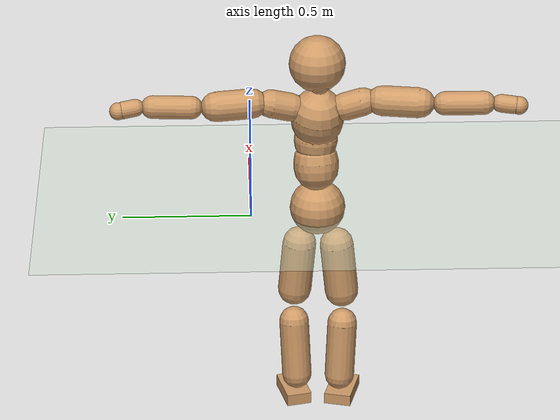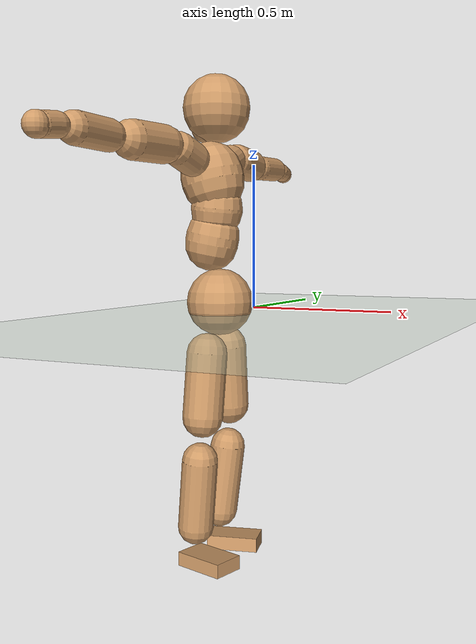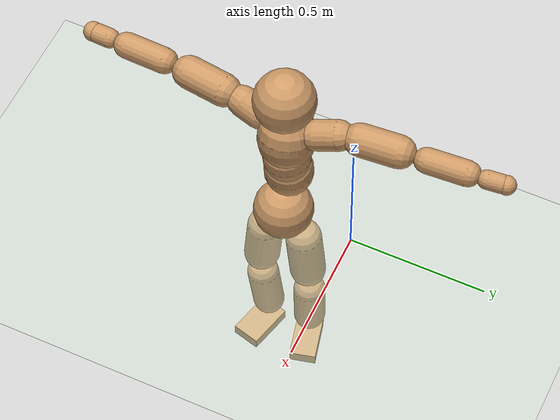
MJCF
<mujoco model="humanoid">
  <compiler coordinate="local"/>
  <default>
    <joint damping="0.0" armature="0.01" stiffness="0.0" limited="true"/>
    <geom conaffinity="1" condim="3" contype="7" margin="0.001" rgba="0.8 0.6 .4 1"/>
  </default>
  <asset>
    <texture type="skybox" builtin="gradient" rgb1=".4 .5 .6" rgb2="0 0 0" width="100" height="100"/>
    <texture builtin="flat" height="1278" mark="cross" markrgb="1 1 1" name="texgeom" random="0.01" rgb1="0.8 0.6 0.4" rgb2="0.8 0.6 0.4" type="cube" width="127"/>
    <texture builtin="checker" height="100" name="texplane" rgb1="0 0 0" rgb2="0.8 0.8 0.8" type="2d" width="100"/>
    <material name="MatPlane" reflectance="0.5" shininess="1" specular="1" texrepeat="60 60" texture="texplane"/>
    <material name="geom" texture="texgeom" texuniform="true"/>
  </asset>
  <worldbody>
    <light cutoff="100" diffuse="1 1 1" dir="-0 0 -1.3" directional="true" exponent="1" pos="0 0 1.3" specular=".1 .1 .1"/>
    <geom conaffinity="1" condim="3" name="floor" pos="0 0 0" rgba="0.8 0.9 0.8 1" size="100 100 .2" type="plane" material="MatPlane"/>
    <body name="Pelvis" pos="-0 -0.2593 0.0372">
      <freejoint name="Pelvis"/>
      <geom type="sphere" contype="1" conaffinity="1" density="500" size="0.1083" pos="0.0000 0.0000 0.0000" name="Pelvis"/>
      <body name="L_Hip" pos="-0.0122 0.0652 -0.0847">
        <joint name="L_Hip_x" type="hinge" pos="0 0 0" axis="1 0 0" stiffness="800" damping="80" armature="0.02" range="-180.0000 180.0000"/>
        <joint name="L_Hip_y" type="hinge" pos="0 0 0" axis="0 1 0" stiffness="800" damping="80" armature="0.02" range="-180.0000 180.0000"/>
        <joint name="L_Hip_z" type="hinge" pos="0 0 0" axis="0 0 1" stiffness="800" damping="80" armature="0.02" range="-180.0000 180.0000"/>
        <geom type="capsule" contype="1" conaffinity="1" density="500" fromto="0.0001 0.0063 -0.0679 0.0003 0.0252 -0.2716" size="0.0654" name="L_Hip"/>
        <body name="L_Knee" pos="0.0004 0.0315 -0.3395">
          <joint name="L_Knee_x" type="hinge" pos="0 0 0" axis="1 0 0" stiffness="800" damping="80" armature="0.02" range="-180.0000 180.0000"/>
          <joint name="L_Knee_y" type="hinge" pos="0 0 0" axis="0 1 0" stiffness="800" damping="80" armature="0.02" range="-180.0000 180.0000"/>
          <joint name="L_Knee_z" type="hinge" pos="0 0 0" axis="0 0 1" stiffness="800" damping="80" armature="0.02" range="-180.0000 180.0000"/>
          <geom type="capsule" contype="1" conaffinity="1" density="500" fromto="-0.0084 -0.0033 -0.0759 -0.0338 -0.0134 -0.3035" size="0.0584" name="L_Knee"/>
          <body name="L_Ankle" pos="-0.0422 -0.0167 -0.3794">
            <joint name="L_Ankle_x" type="hinge" pos="0 0 0" axis="1 0 0" stiffness="800" damping="80" armature="0.02" range="-180.0000 180.0000"/>
            <joint name="L_Ankle_y" type="hinge" pos="0 0 0" axis="0 1 0" stiffness="800" damping="80" armature="0.02" range="-180.0000 180.0000"/>
            <joint name="L_Ankle_z" type="hinge" pos="0 0 0" axis="0 0 1" stiffness="800" damping="80" armature="0.02" range="-180.0000 180.0000"/>
            <geom type="box" contype="1" conaffinity="1" density="500" pos="0.0592 0.0145 -0.0272" size="0.0866 0.0491 0.0233" quat="0.9928 0.0000 0.0000 0.1198" name="L_Ankle"/>
            <body name="L_Toe" pos="0.1184 0.029 -0.0544">
              <joint name="L_Toe_x" type="hinge" pos="0 0 0" axis="1 0 0" stiffness="500" damping="50" armature="0.02" range="-180.0000 180.0000"/>
              <joint name="L_Toe_y" type="hinge" pos="0 0 0" axis="0 1 0" stiffness="500" damping="50" armature="0.02" range="-180.0000 180.0000"/>
              <joint name="L_Toe_z" type="hinge" pos="0 0 0" axis="0 0 1" stiffness="500" damping="50" armature="0.02" range="-180.0000 180.0000"/>
              <geom type="box" contype="1" conaffinity="1" density="500" pos="0.0000 0.0000 0.0275" size="0.001 0.0025 0.0012" quat="0.9921 0.0000 0.0000 0.1257" name="L_Toe"/>
            </body>
          </body>
        </body>
      </body>
      <body name="R_Hip" pos="-0.0062 -0.0683 -0.0935">
        <joint name="R_Hip_x" type="hinge" pos="0 0 0" axis="1 0 0" stiffness="800" damping="80" armature="0.02" range="-180.0000 180.0000"/>
        <joint name="R_Hip_y" type="hinge" pos="0 0 0" axis="0 1 0" stiffness="800" damping="80" armature="0.02" range="-180.0000 180.0000"/>
        <joint name="R_Hip_z" type="hinge" pos="0 0 0" axis="0 0 1" stiffness="800" damping="80" armature="0.02" range="-180.0000 180.0000"/>
        <geom type="capsule" contype="1" conaffinity="1" density="500" fromto="-0.0019 -0.0067 -0.0684 -0.0077 -0.0267 -0.2735" size="0.0656" name="R_Hip"/>
        <body name="R_Knee" pos="-0.0096 -0.0334 -0.3419">
          <joint name="R_Knee_x" type="hinge" pos="0 0 0" axis="1 0 0" stiffness="800" damping="80" armature="0.02" range="-180.0000 180.0000"/>
          <joint name="R_Knee_y" type="hinge" pos="0 0 0" axis="0 1 0" stiffness="800" damping="80" armature="0.02" range="-180.0000 180.0000"/>
          <joint name="R_Knee_z" type="hinge" pos="0 0 0" axis="0 0 1" stiffness="800" damping="80" armature="0.02" range="-180.0000 180.0000"/>
          <geom type="capsule" contype="1" conaffinity="1" density="500" fromto="-0.0077 0.0038 -0.0748 -0.0309 0.0151 -0.2992" size="0.0584" name="R_Knee"/>
          <body name="R_Ankle" pos="-0.0387 0.0189 -0.374">
            <joint name="R_Ankle_x" type="hinge" pos="0 0 0" axis="1 0 0" stiffness="800" damping="80" armature="0.02" range="-180.0000 180.0000"/>
            <joint name="R_Ankle_y" type="hinge" pos="0 0 0" axis="0 1 0" stiffness="800" damping="80" armature="0.02" range="-180.0000 180.0000"/>
            <joint name="R_Ankle_z" type="hinge" pos="0 0 0" axis="0 0 1" stiffness="800" damping="80" armature="0.02" range="-180.0000 180.0000"/>
            <geom type="box" contype="1" conaffinity="1" density="500" pos="0.0625 -0.0162 -0.0281" size="0.0863 0.0528 0.0225" quat="0.9920 0.0000 0.0000 -0.1264" name="R_Ankle"/>
            <body name="R_Toe" pos="0.1251 -0.0324 -0.0562">
              <joint name="R_Toe_x" type="hinge" pos="0 0 0" axis="1 0 0" stiffness="500" damping="50" armature="0.02" range="-180.0000 180.0000"/>
              <joint name="R_Toe_y" type="hinge" pos="0 0 0" axis="0 1 0" stiffness="500" damping="50" armature="0.02" range="-180.0000 180.0000"/>
              <joint name="R_Toe_z" type="hinge" pos="0 0 0" axis="0 0 1" stiffness="500" damping="50" armature="0.02" range="-180.0000 180.0000"/>
              <geom type="box" contype="1" conaffinity="1" density="500" pos="0.0000 0.0000 0.0292" size="0.0012 0.0026 0.0012" quat="0.9931 0.0000 0.0000 -0.1172" name="R_Toe"/>
            </body>
          </body>
        </body>
      </body>
      <body name="Torso" pos="-0.0451 0.0042 0.1316">
        <joint name="Torso_x" type="hinge" pos="0 0 0" axis="1 0 0" stiffness="1000" damping="100" armature="0.02" range="-180.0000 180.0000"/>
        <joint name="Torso_y" type="hinge" pos="0 0 0" axis="0 1 0" stiffness="1000" damping="100" armature="0.02" range="-180.0000 180.0000"/>
        <joint name="Torso_z" type="hinge" pos="0 0 0" axis="0 0 1" stiffness="1000" damping="100" armature="0.02" range="-180.0000 180.0000"/>
        <geom type="capsule" contype="1" conaffinity="1" density="500" fromto="0.0166 0.0030 0.0841 0.0110 0.0020 0.0561" size="0.087048" name="Torso"/>
        <body name="Spine" pos="0.0276 0.005 0.1402">
          <joint name="Spine_x" type="hinge" pos="0 0 0" axis="1 0 0" stiffness="1000" damping="100" armature="0.02" range="-180.0000 180.0000"/>
          <joint name="Spine_y" type="hinge" pos="0 0 0" axis="0 1 0" stiffness="1000" damping="100" armature="0.02" range="-180.0000 180.0000"/>
          <joint name="Spine_z" type="hinge" pos="0 0 0" axis="0 0 1" stiffness="1000" damping="100" armature="0.02" range="-180.0000 180.0000"/>
          <geom type="capsule" contype="1" conaffinity="1" density="500" fromto="0.0042 -0.0019 0.0342 0.0028 -0.0013 0.0228" size="0.084258" name="Spine"/>
          <body name="Chest" pos="0.0069 -0.0032 0.057">
            <joint name="Chest_x" type="hinge" pos="0 0 0" axis="1 0 0" stiffness="1000" damping="100" armature="0.02" range="-180.0000 180.0000"/>
            <joint name="Chest_y" type="hinge" pos="0 0 0" axis="0 1 0" stiffness="1000" damping="100" armature="0.02" range="-180.0000 180.0000"/>
            <joint name="Chest_z" type="hinge" pos="0 0 0" axis="0 0 1" stiffness="1000" damping="100" armature="0.02" range="-180.0000 180.0000"/>
            <geom type="capsule" contype="1" conaffinity="1" density="500" fromto="-0.0199 -0.0051 0.0882 -0.0132 -0.0034 0.0588" size="0.101556" name="Chest"/>
            <body name="Neck" pos="-0.0486 -0.0132 0.212">
              <joint name="Neck_x" type="hinge" pos="0 0 0" axis="1 0 0" stiffness="500" damping="50" armature="0.02" range="-180.0000 180.0000"/>
              <joint name="Neck_y" type="hinge" pos="0 0 0" axis="0 1 0" stiffness="500" damping="50" armature="0.02" range="-180.0000 180.0000"/>
              <joint name="Neck_z" type="hinge" pos="0 0 0" axis="0 0 1" stiffness="500" damping="50" armature="0.02" range="-180.0000 180.0000"/>
              <geom type="capsule" contype="1" conaffinity="1" density="500" fromto="0.0097 0.0018 0.0158 0.0390 0.0073 0.0633" size="0.043896" name="Neck"/>
              <body name="Head" pos="0.0487 0.0091 0.0791">
                <joint name="Head_x" type="hinge" pos="0 0 0" axis="1 0 0" stiffness="500" damping="50" armature="0.02" range="-180.0000 180.0000"/>
                <joint name="Head_y" type="hinge" pos="0 0 0" axis="0 1 0" stiffness="500" damping="50" armature="0.02" range="-180.0000 180.0000"/>
                <joint name="Head_z" type="hinge" pos="0 0 0" axis="0 0 1" stiffness="500" damping="50" armature="0.02" range="-180.0000 180.0000"/>
                <geom type="sphere" contype="1" conaffinity="1" density="500" size="0.1089" pos="0.0000 0.0000 0.0000" name="Head"/>
              </body>
            </body>
            <body name="L_Thorax" pos="-0.0234 0.073 0.1147">
              <joint name="L_Thorax_x" type="hinge" pos="0 0 0" axis="1 0 0" stiffness="500" damping="50" armature="0.02" range="-180.0000 180.0000"/>
              <joint name="L_Thorax_y" type="hinge" pos="0 0 0" axis="0 1 0" stiffness="500" damping="50" armature="0.02" range="-180.0000 180.0000"/>
              <joint name="L_Thorax_z" type="hinge" pos="0 0 0" axis="0 0 1" stiffness="500" damping="50" armature="0.02" range="-180.0000 180.0000"/>
              <geom type="capsule" contype="1" conaffinity="1" density="500" fromto="-0.0050 0.0254 0.0077 -0.0201 0.1015 0.0308" size="0.0544" name="L_Thorax"/>
              <body name="L_Shoulder" pos="-0.0251 0.1269 0.0385">
                <joint name="L_Shoulder_x" type="hinge" pos="0 0 0" axis="1 0 0" stiffness="500" damping="50" armature="0.02" range="-720.0000 720.0000"/>
                <joint name="L_Shoulder_y" type="hinge" pos="0 0 0" axis="0 1 0" stiffness="500" damping="50" armature="0.02" range="-720.0000 720.0000"/>
                <joint name="L_Shoulder_z" type="hinge" pos="0 0 0" axis="0 0 1" stiffness="500" damping="50" armature="0.02" range="-720.0000 720.0000"/>
                <geom type="capsule" contype="1" conaffinity="1" density="500" fromto="-0.0044 0.0460 -0.0017 -0.0177 0.1838 -0.0066" size="0.0579" name="L_Shoulder"/>
                <body name="L_Elbow" pos="-0.0221 0.2298 -0.0083">
                  <joint name="L_Elbow_x" type="hinge" pos="0 0 0" axis="1 0 0" stiffness="500" damping="50" armature="0.02" range="-720.0000 720.0000"/>
                  <joint name="L_Elbow_y" type="hinge" pos="0 0 0" axis="0 1 0" stiffness="500" damping="50" armature="0.02" range="-720.0000 720.0000"/>
                  <joint name="L_Elbow_z" type="hinge" pos="0 0 0" axis="0 0 1" stiffness="500" damping="50" armature="0.02" range="-720.0000 720.0000"/>
                  <geom type="capsule" contype="1" conaffinity="1" density="500" fromto="-0.0014 0.0484 0.0021 -0.0054 0.1937 0.0085" size="0.0448" name="L_Elbow"/>
                  <body name="L_Wrist" pos="-0.0068 0.2421 0.0106">
                    <joint name="L_Wrist_x" type="hinge" pos="0 0 0" axis="1 0 0" stiffness="300" damping="30" armature="0.02" range="-180.0000 180.0000"/>
                    <joint name="L_Wrist_y" type="hinge" pos="0 0 0" axis="0 1 0" stiffness="300" damping="30" armature="0.02" range="-180.0000 180.0000"/>
                    <joint name="L_Wrist_z" type="hinge" pos="0 0 0" axis="0 0 1" stiffness="300" damping="30" armature="0.02" range="-180.0000 180.0000"/>
                    <geom type="capsule" contype="1" conaffinity="1" density="500" fromto="-0.0029 0.0164 -0.0020 -0.0114 0.0656 -0.0081" size="0.0334" name="L_Wrist"/>
                    <body name="L_Hand" pos="-0.0143 0.082 -0.0101">
                      <joint name="L_Hand_x" type="hinge" pos="0 0 0" axis="1 0 0" stiffness="300" damping="30" armature="0.02" range="-180.0000 180.0000"/>
                      <joint name="L_Hand_y" type="hinge" pos="0 0 0" axis="0 1 0" stiffness="300" damping="30" armature="0.02" range="-180.0000 180.0000"/>
                      <joint name="L_Hand_z" type="hinge" pos="0 0 0" axis="0 0 1" stiffness="300" damping="30" armature="0.02" range="-180.0000 180.0000"/>
                      <geom type="sphere" contype="1" conaffinity="1" density="500" size="0.0340" pos="0.0000 0.0000 0.0000" name="L_Hand"/>
                    </body>
                  </body>
                </body>
              </body>
            </body>
            <body name="R_Thorax" pos="-0.0273 -0.0853 0.1144">
              <joint name="R_Thorax_x" type="hinge" pos="0 0 0" axis="1 0 0" stiffness="500" damping="50" armature="0.02" range="-180.0000 180.0000"/>
              <joint name="R_Thorax_y" type="hinge" pos="0 0 0" axis="0 1 0" stiffness="500" damping="50" armature="0.02" range="-180.0000 180.0000"/>
              <joint name="R_Thorax_z" type="hinge" pos="0 0 0" axis="0 0 1" stiffness="500" damping="50" armature="0.02" range="-180.0000 180.0000"/>
              <geom type="capsule" contype="1" conaffinity="1" density="500" fromto="-0.0026 -0.0234 0.0080 -0.0104 -0.0936 0.0320" size="0.0543" name="R_Thorax"/>
              <body name="R_Shoulder" pos="-0.013 -0.1171 0.0399">
                <joint name="R_Shoulder_x" type="hinge" pos="0 0 0" axis="1 0 0" stiffness="500" damping="50" armature="0.02" range="-720.0000 720.0000"/>
                <joint name="R_Shoulder_y" type="hinge" pos="0 0 0" axis="0 1 0" stiffness="500" damping="50" armature="0.02" range="-720.0000 720.0000"/>
                <joint name="R_Shoulder_z" type="hinge" pos="0 0 0" axis="0 0 1" stiffness="500" damping="50" armature="0.02" range="-720.0000 720.0000"/>
                <geom type="capsule" contype="1" conaffinity="1" density="500" fromto="-0.0066 -0.0474 -0.0005 -0.0265 -0.1897 -0.0019" size="0.0583" name="R_Shoulder"/>
                <body name="R_Elbow" pos="-0.0331 -0.2372 -0.0024">
                  <joint name="R_Elbow_x" type="hinge" pos="0 0 0" axis="1 0 0" stiffness="500" damping="50" armature="0.02" range="-720.0000 720.0000"/>
                  <joint name="R_Elbow_y" type="hinge" pos="0 0 0" axis="0 1 0" stiffness="500" damping="50" armature="0.02" range="-720.0000 720.0000"/>
                  <joint name="R_Elbow_z" type="hinge" pos="0 0 0" axis="0 0 1" stiffness="500" damping="50" armature="0.02" range="-720.0000 720.0000"/>
                  <geom type="capsule" contype="1" conaffinity="1" density="500" fromto="-0.0014 -0.0489 0.0006 -0.0054 -0.1955 0.0025" size="0.046" name="R_Elbow"/>
                  <body name="R_Wrist" pos="-0.0068 -0.2444 0.0031">
                    <joint name="R_Wrist_x" type="hinge" pos="0 0 0" axis="1 0 0" stiffness="300" damping="30" armature="0.02" range="-180.0000 180.0000"/>
                    <joint name="R_Wrist_y" type="hinge" pos="0 0 0" axis="0 1 0" stiffness="300" damping="30" armature="0.02" range="-180.0000 180.0000"/>
                    <joint name="R_Wrist_z" type="hinge" pos="0 0 0" axis="0 0 1" stiffness="300" damping="30" armature="0.02" range="-180.0000 180.0000"/>
                    <geom type="capsule" contype="1" conaffinity="1" density="500" fromto="-0.0018 -0.0172 -0.0017 -0.0072 -0.0687 -0.0068" size="0.0348" name="R_Wrist"/>
                    <body name="R_Hand" pos="-0.009 -0.0859 -0.0085">
                      <joint name="R_Hand_x" type="hinge" pos="0 0 0" axis="1 0 0" stiffness="300" damping="30" armature="0.02" range="-180.0000 180.0000"/>
                      <joint name="R_Hand_y" type="hinge" pos="0 0 0" axis="0 1 0" stiffness="300" damping="30" armature="0.02" range="-180.0000 180.0000"/>
                      <joint name="R_Hand_z" type="hinge" pos="0 0 0" axis="0 0 1" stiffness="300" damping="30" armature="0.02" range="-180.0000 180.0000"/>
                      <geom type="sphere" contype="1" conaffinity="1" density="500" size="0.0353" pos="0.0000 0.0000 0.0000" name="R_Hand"/>
                    </body>
                  </body>
                </body>
              </body>
            </body>
          </body>
        </body>
      </body>
    </body>
  </worldbody>
  <actuator>
    <motor name="L_Hip_x" joint="L_Hip_x" gear="500"/>
    <motor name="L_Hip_y" joint="L_Hip_y" gear="500"/>
    <motor name="L_Hip_z" joint="L_Hip_z" gear="500"/>
    <motor name="L_Knee_x" joint="L_Knee_x" gear="500"/>
    <motor name="L_Knee_y" joint="L_Knee_y" gear="500"/>
    <motor name="L_Knee_z" joint="L_Knee_z" gear="500"/>
    <motor name="L_Ankle_x" joint="L_Ankle_x" gear="500"/>
    <motor name="L_Ankle_y" joint="L_Ankle_y" gear="500"/>
    <motor name="L_Ankle_z" joint="L_Ankle_z" gear="500"/>
    <motor name="L_Toe_x" joint="L_Toe_x" gear="500"/>
    <motor name="L_Toe_y" joint="L_Toe_y" gear="500"/>
    <motor name="L_Toe_z" joint="L_Toe_z" gear="500"/>
    <motor name="R_Hip_x" joint="R_Hip_x" gear="500"/>
    <motor name="R_Hip_y" joint="R_Hip_y" gear="500"/>
    <motor name="R_Hip_z" joint="R_Hip_z" gear="500"/>
    <motor name="R_Knee_x" joint="R_Knee_x" gear="500"/>
    <motor name="R_Knee_y" joint="R_Knee_y" gear="500"/>
    <motor name="R_Knee_z" joint="R_Knee_z" gear="500"/>
    <motor name="R_Ankle_x" joint="R_Ankle_x" gear="500"/>
    <motor name="R_Ankle_y" joint="R_Ankle_y" gear="500"/>
    <motor name="R_Ankle_z" joint="R_Ankle_z" gear="500"/>
    <motor name="R_Toe_x" joint="R_Toe_x" gear="500"/>
    <motor name="R_Toe_y" joint="R_Toe_y" gear="500"/>
    <motor name="R_Toe_z" joint="R_Toe_z" gear="500"/>
    <motor name="Torso_x" joint="Torso_x" gear="500"/>
    <motor name="Torso_y" joint="Torso_y" gear="500"/>
    <motor name="Torso_z" joint="Torso_z" gear="500"/>
    <motor name="Spine_x" joint="Spine_x" gear="500"/>
    <motor name="Spine_y" joint="Spine_y" gear="500"/>
    <motor name="Spine_z" joint="Spine_z" gear="500"/>
    <motor name="Chest_x" joint="Chest_x" gear="500"/>
    <motor name="Chest_y" joint="Chest_y" gear="500"/>
    <motor name="Chest_z" joint="Chest_z" gear="500"/>
    <motor name="Neck_x" joint="Neck_x" gear="500"/>
    <motor name="Neck_y" joint="Neck_y" gear="500"/>
    <motor name="Neck_z" joint="Neck_z" gear="500"/>
    <motor name="Head_x" joint="Head_x" gear="500"/>
    <motor name="Head_y" joint="Head_y" gear="500"/>
    <motor name="Head_z" joint="Head_z" gear="500"/>
    <motor name="L_Thorax_x" joint="L_Thorax_x" gear="500"/>
    <motor name="L_Thorax_y" joint="L_Thorax_y" gear="500"/>
    <motor name="L_Thorax_z" joint="L_Thorax_z" gear="500"/>
    <motor name="L_Shoulder_x" joint="L_Shoulder_x" gear="500"/>
    <motor name="L_Shoulder_y" joint="L_Shoulder_y" gear="500"/>
    <motor name="L_Shoulder_z" joint="L_Shoulder_z" gear="500"/>
    <motor name="L_Elbow_x" joint="L_Elbow_x" gear="500"/>
    <motor name="L_Elbow_y" joint="L_Elbow_y" gear="500"/>
    <motor name="L_Elbow_z" joint="L_Elbow_z" gear="500"/>
    <motor name="L_Wrist_x" joint="L_Wrist_x" gear="500"/>
    <motor name="L_Wrist_y" joint="L_Wrist_y" gear="500"/>
    <motor name="L_Wrist_z" joint="L_Wrist_z" gear="500"/>
    <motor name="L_Hand_x" joint="L_Hand_x" gear="500"/>
    <motor name="L_Hand_y" joint="L_Hand_y" gear="500"/>
    <motor name="L_Hand_z" joint="L_Hand_z" gear="500"/>
    <motor name="R_Thorax_x" joint="R_Thorax_x" gear="500"/>
    <motor name="R_Thorax_y" joint="R_Thorax_y" gear="500"/>
    <motor name="R_Thorax_z" joint="R_Thorax_z" gear="500"/>
    <motor name="R_Shoulder_x" joint="R_Shoulder_x" gear="500"/>
    <motor name="R_Shoulder_y" joint="R_Shoulder_y" gear="500"/>
    <motor name="R_Shoulder_z" joint="R_Shoulder_z" gear="500"/>
    <motor name="R_Elbow_x" joint="R_Elbow_x" gear="500"/>
    <motor name="R_Elbow_y" joint="R_Elbow_y" gear="500"/>
    <motor name="R_Elbow_z" joint="R_Elbow_z" gear="500"/>
    <motor name="R_Wrist_x" joint="R_Wrist_x" gear="500"/>
    <motor name="R_Wrist_y" joint="R_Wrist_y" gear="500"/>
    <motor name="R_Wrist_z" joint="R_Wrist_z" gear="500"/>
    <motor name="R_Hand_x" joint="R_Hand_x" gear="500"/>
    <motor name="R_Hand_y" joint="R_Hand_y" gear="500"/>
    <motor name="R_Hand_z" joint="R_Hand_z" gear="500"/>
  </actuator>
  <contact>
    <exclude body1="Torso" body2="Chest"/>
    <exclude body1="Head" body2="Chest"/>
    <exclude body1="R_Knee" body2="R_Toe"/>
    <exclude body1="R_Knee" body2="L_Ankle"/>
    <exclude body1="R_Knee" body2="L_Toe"/>
    <exclude body1="L_Knee" body2="L_Toe"/>
    <exclude body1="L_Knee" body2="R_Ankle"/>
    <exclude body1="L_Knee" body2="R_Toe"/>
    <exclude body1="L_Shoulder" body2="Chest"/>
    <exclude body1="R_Shoulder" body2="Chest"/>
  </contact>
  <sensor/>
  <size njmax="700" nconmax="700"/>
</mujoco>
